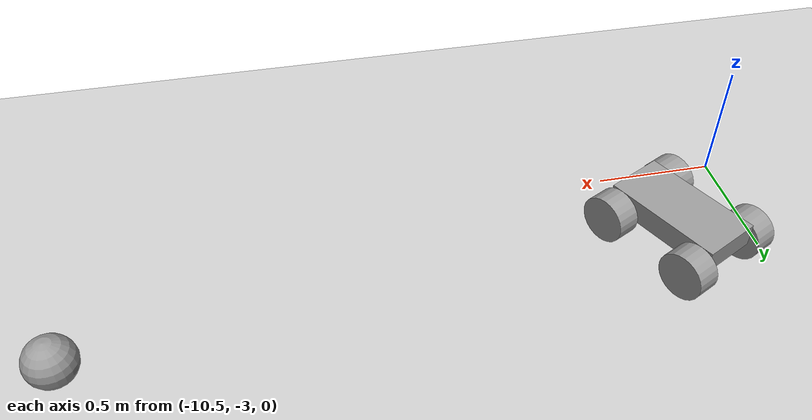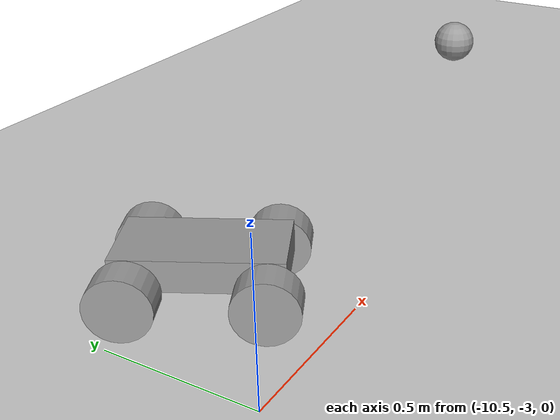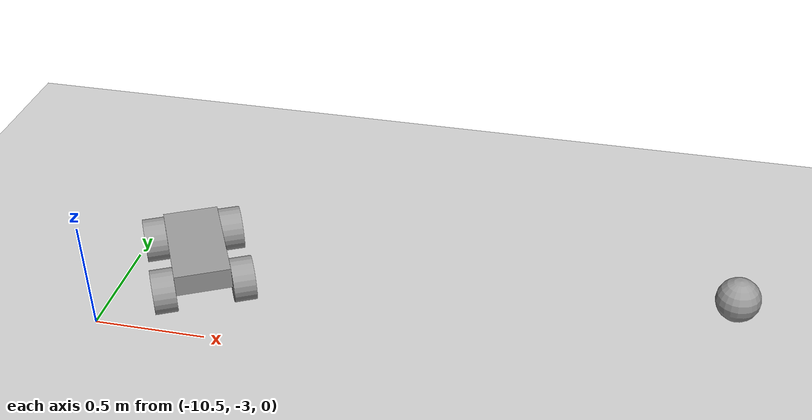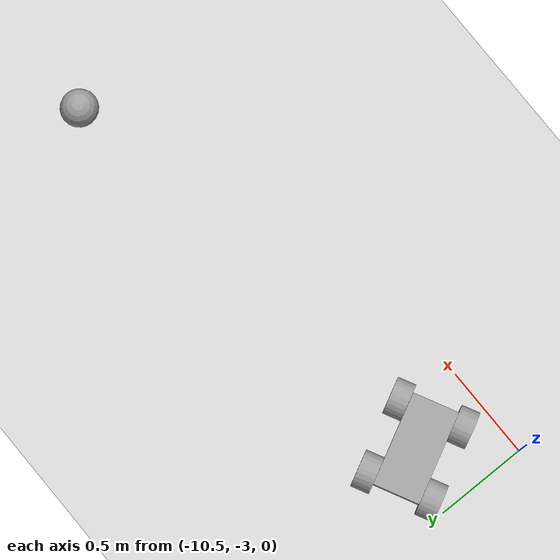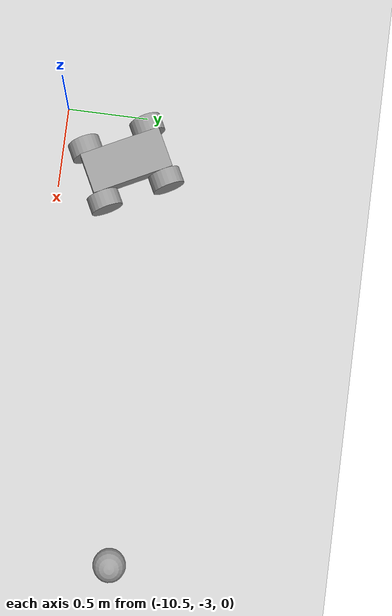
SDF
<sdf version="1.6">
 <world name="default">
  <model name="ground_plane">
   <static>1</static>
   <link name="link">
    <collision name="collision">
     <geometry><plane><normal>0 0 1</normal><size>100 100</size></plane></geometry>
     <surface>
      <contact><collide_bitmask>65535</collide_bitmask></contact>
      <friction><ode><mu>100</mu><mu2>50</mu2></ode></friction>
     </surface>
    </collision>
    <visual name="visual">
     <cast_shadows>0</cast_shadows>
     <geometry><plane><normal>0 0 1</normal><size>100 100</size></plane></geometry>
     <material>
      <script><uri>file://media/materials/scripts/gazebo.material</uri><name>Gazebo/Grey</name></script>
     </material>
    </visual>
   </link>
  </model>
  <model name="carbot_0">
   <link name="link_0">
    <inertial>
     <mass>1</mass>
     <inertia>
      <ixx>0.166667</ixx>
      <ixy>0</ixy>
      <ixz>0</ixz>
      <iyy>0.166667</iyy>
      <iyz>0</iyz>
      <izz>0.166667</izz>
     </inertia>
    </inertial>
    <pose>0 -0 0.2 0 -0 0</pose>
    <visual name="visual">
     <geometry><box><size>0.5 0.25 0.1</size></box></geometry>
     <material>
      <lighting>1</lighting>
      <script><uri>file://media/materials/scripts/gazebo.material</uri><name>Gazebo/Grey</name></script>
      <shader type="pixel"><normal_map>__default__</normal_map></shader>
      <ambient>0.3 0.3 0.3 1</ambient>
      <diffuse>0.7 0.7 0.7 1</diffuse>
      <specular>0.01 0.01 0.01 1</specular>
      <emissive>0 0 0 1</emissive>
     </material>
    </visual>
    <collision name="collision">
     <geometry><box><size>0.5 0.25 0.1</size></box></geometry>
     <surface>
      <friction>
       <ode><mu>1</mu><mu2>1</mu2><fdir1>0 0 0</fdir1><slip1>0</slip1><slip2>0</slip2></ode>
       <torsional>
        <coefficient>1</coefficient>
        <patch_radius>0</patch_radius>
        <surface_radius>0</surface_radius>
        <use_patch_radius>1</use_patch_radius>
        <ode><slip>0</slip></ode>
       </torsional>
      </friction>
      <bounce><restitution_coefficient>0</restitution_coefficient><threshold>1e+06</threshold></bounce>
      <contact>
       <collide_without_contact>0</collide_without_contact>
       <collide_without_contact_bitmask>1</collide_without_contact_bitmask>
       <collide_bitmask>1</collide_bitmask>
       <ode>
        <soft_cfm>0</soft_cfm>
        <soft_erp>0.2</soft_erp>
        <kp>1e+13</kp>
        <kd>1</kd>
        <max_vel>0.01</max_vel>
        <min_depth>0</min_depth>
       </ode>
       <bullet>
        <split_impulse>1</split_impulse>
        <split_impulse_penetration_threshold>-0.01</split_impulse_penetration_threshold>
        <soft_cfm>0</soft_cfm>
        <soft_erp>0.2</soft_erp>
        <kp>1e+13</kp>
        <kd>1</kd>
       </bullet>
      </contact>
     </surface>
    </collision>
   </link>
   <link name="link_2_clone">
    <inertial>
     <mass>1</mass>
     <inertia><ixx>0.145833</ixx><ixy>0</ixy><ixz>0</ixz><iyy>0.145833</iyy><iyz>0</iyz><izz>0.125</izz></inertia>
    </inertial>
    <pose>0.20023 -0.175088 0.15 1.5707 -0 0</pose>
    <visual name="visual">
     <geometry><cylinder><radius>0.1</radius><length>0.1</length></cylinder></geometry>
     <material>
      <lighting>1</lighting>
      <script><uri>file://media/materials/scripts/gazebo.material</uri><name>Gazebo/Grey</name></script>
      <shader type="pixel"><normal_map>__default__</normal_map></shader>
      <ambient>0.3 0.3 0.3 1</ambient>
      <diffuse>0.7 0.7 0.7 1</diffuse>
      <specular>0.01 0.01 0.01 1</specular>
      <emissive>0 0 0 1</emissive>
     </material>
    </visual>
    <collision name="collision">
     <geometry><cylinder><radius>0.1</radius><length>0.1</length></cylinder></geometry>
     <surface>
      <friction>
       <ode><mu>1</mu><mu2>1</mu2><fdir1>0 0 0</fdir1><slip1>0</slip1><slip2>0</slip2></ode>
       <torsional>
        <coefficient>1</coefficient>
        <patch_radius>0</patch_radius>
        <surface_radius>0</surface_radius>
        <use_patch_radius>1</use_patch_radius>
        <ode><slip>0</slip></ode>
       </torsional>
      </friction>
      <bounce><restitution_coefficient>0</restitution_coefficient><threshold>1e+06</threshold></bounce>
      <contact>
       <collide_without_contact>0</collide_without_contact>
       <collide_without_contact_bitmask>1</collide_without_contact_bitmask>
       <collide_bitmask>1</collide_bitmask>
       <ode>
        <soft_cfm>0</soft_cfm>
        <soft_erp>0.2</soft_erp>
        <kp>1e+13</kp>
        <kd>1</kd>
        <max_vel>0.01</max_vel>
        <min_depth>0</min_depth>
       </ode>
       <bullet>
        <split_impulse>1</split_impulse>
        <split_impulse_penetration_threshold>-0.01</split_impulse_penetration_threshold>
        <soft_cfm>0</soft_cfm>
        <soft_erp>0.2</soft_erp>
        <kp>1e+13</kp>
        <kd>1</kd>
       </bullet>
      </contact>
     </surface>
    </collision>
   </link>
   <link name="link_2_clone_clone">
    <inertial>
     <mass>1</mass>
     <inertia><ixx>0.145833</ixx><ixy>0</ixy><ixz>0</ixz><iyy>0.145833</iyy><iyz>0</iyz><izz>0.125</izz></inertia>
    </inertial>
    <pose>-0.2 -0.175422 0.15 1.5707 -0 0</pose>
    <visual name="visual">
     <geometry><cylinder><radius>0.1</radius><length>0.1</length></cylinder></geometry>
     <material>
      <lighting>1</lighting>
      <script><uri>file://media/materials/scripts/gazebo.material</uri><name>Gazebo/Grey</name></script>
      <shader type="pixel"><normal_map>__default__</normal_map></shader>
      <ambient>0.3 0.3 0.3 1</ambient>
      <diffuse>0.7 0.7 0.7 1</diffuse>
      <specular>0.01 0.01 0.01 1</specular>
      <emissive>0 0 0 1</emissive>
     </material>
    </visual>
    <collision name="collision">
     <geometry><cylinder><radius>0.1</radius><length>0.1</length></cylinder></geometry>
     <surface>
      <friction>
       <ode><mu>1</mu><mu2>1</mu2><fdir1>0 0 0</fdir1><slip1>0</slip1><slip2>0</slip2></ode>
       <torsional>
        <coefficient>1</coefficient>
        <patch_radius>0</patch_radius>
        <surface_radius>0</surface_radius>
        <use_patch_radius>1</use_patch_radius>
        <ode><slip>0</slip></ode>
       </torsional>
      </friction>
      <bounce><restitution_coefficient>0</restitution_coefficient><threshold>1e+06</threshold></bounce>
      <contact>
       <collide_without_contact>0</collide_without_contact>
       <collide_without_contact_bitmask>1</collide_without_contact_bitmask>
       <collide_bitmask>1</collide_bitmask>
       <ode>
        <soft_cfm>0</soft_cfm>
        <soft_erp>0.2</soft_erp>
        <kp>1e+13</kp>
        <kd>1</kd>
        <max_vel>0.01</max_vel>
        <min_depth>0</min_depth>
       </ode>
       <bullet>
        <split_impulse>1</split_impulse>
        <split_impulse_penetration_threshold>-0.01</split_impulse_penetration_threshold>
        <soft_cfm>0</soft_cfm>
        <soft_erp>0.2</soft_erp>
        <kp>1e+13</kp>
        <kd>1</kd>
       </bullet>
      </contact>
     </surface>
    </collision>
   </link>
   <link name="link_2_clone_clone_0">
    <inertial>
     <mass>1</mass>
     <inertia><ixx>0.145833</ixx><ixy>0</ixy><ixz>0</ixz><iyy>0.145833</iyy><iyz>0</iyz><izz>0.125</izz></inertia>
    </inertial>
    <pose>-0.199762 0.175089 0.15 1.5707 -0 0</pose>
    <visual name="visual">
     <geometry><cylinder><radius>0.1</radius><length>0.1</length></cylinder></geometry>
     <material>
      <lighting>1</lighting>
      <script><uri>file://media/materials/scripts/gazebo.material</uri><name>Gazebo/Grey</name></script>
      <shader type="pixel"><normal_map>__default__</normal_map></shader>
      <ambient>0.3 0.3 0.3 1</ambient>
      <diffuse>0.7 0.7 0.7 1</diffuse>
      <specular>0.01 0.01 0.01 1</specular>
      <emissive>0 0 0 1</emissive>
     </material>
    </visual>
    <collision name="collision">
     <geometry><cylinder><radius>0.1</radius><length>0.1</length></cylinder></geometry>
     <surface>
      <friction>
       <ode><mu>1</mu><mu2>1</mu2><fdir1>0 0 0</fdir1><slip1>0</slip1><slip2>0</slip2></ode>
       <torsional>
        <coefficient>1</coefficient>
        <patch_radius>0</patch_radius>
        <surface_radius>0</surface_radius>
        <use_patch_radius>1</use_patch_radius>
        <ode><slip>0</slip></ode>
       </torsional>
      </friction>
      <bounce><restitution_coefficient>0</restitution_coefficient><threshold>1e+06</threshold></bounce>
      <contact>
       <collide_without_contact>0</collide_without_contact>
       <collide_without_contact_bitmask>1</collide_without_contact_bitmask>
       <collide_bitmask>1</collide_bitmask>
       <ode>
        <soft_cfm>0</soft_cfm>
        <soft_erp>0.2</soft_erp>
        <kp>1e+13</kp>
        <kd>1</kd>
        <max_vel>0.01</max_vel>
        <min_depth>0</min_depth>
       </ode>
       <bullet>
        <split_impulse>1</split_impulse>
        <split_impulse_penetration_threshold>-0.01</split_impulse_penetration_threshold>
        <soft_cfm>0</soft_cfm>
        <soft_erp>0.2</soft_erp>
        <kp>1e+13</kp>
        <kd>1</kd>
       </bullet>
      </contact>
     </surface>
    </collision>
   </link>
   <link name="link_2_clone_clone_1">
    <inertial>
     <mass>1</mass>
     <inertia><ixx>0.145833</ixx><ixy>0</ixy><ixz>0</ixz><iyy>0.145833</iyy><iyz>0</iyz><izz>0.125</izz></inertia>
    </inertial>
    <pose>0.200238 0.175299 0.15 1.5707 -0 0</pose>
    <visual name="visual">
     <geometry><cylinder><radius>0.1</radius><length>0.1</length></cylinder></geometry>
     <material>
      <lighting>1</lighting>
      <script><uri>file://media/materials/scripts/gazebo.material</uri><name>Gazebo/Grey</name></script>
      <shader type="pixel"><normal_map>__default__</normal_map></shader>
      <ambient>0.3 0.3 0.3 1</ambient>
      <diffuse>0.7 0.7 0.7 1</diffuse>
      <specular>0.01 0.01 0.01 1</specular>
      <emissive>0 0 0 1</emissive>
     </material>
    </visual>
    <collision name="collision">
     <geometry><cylinder><radius>0.1</radius><length>0.1</length></cylinder></geometry>
     <surface>
      <friction>
       <ode><mu>1</mu><mu2>1</mu2><fdir1>0 0 0</fdir1><slip1>0</slip1><slip2>0</slip2></ode>
       <torsional>
        <coefficient>1</coefficient>
        <patch_radius>0</patch_radius>
        <surface_radius>0</surface_radius>
        <use_patch_radius>1</use_patch_radius>
        <ode><slip>0</slip></ode>
       </torsional>
      </friction>
      <bounce><restitution_coefficient>0</restitution_coefficient><threshold>1e+06</threshold></bounce>
      <contact>
       <collide_without_contact>0</collide_without_contact>
       <collide_without_contact_bitmask>1</collide_without_contact_bitmask>
       <collide_bitmask>1</collide_bitmask>
       <ode>
        <soft_cfm>0</soft_cfm>
        <soft_erp>0.2</soft_erp>
        <kp>1e+13</kp>
        <kd>1</kd>
        <max_vel>0.01</max_vel>
        <min_depth>0</min_depth>
       </ode>
       <bullet>
        <split_impulse>1</split_impulse>
        <split_impulse_penetration_threshold>-0.01</split_impulse_penetration_threshold>
        <soft_cfm>0</soft_cfm>
        <soft_erp>0.2</soft_erp>
        <kp>1e+13</kp>
        <kd>1</kd>
       </bullet>
      </contact>
     </surface>
    </collision>
   </link>
   <joint name="link_0_JOINT_0" type="revolute">
    <parent>link_0</parent>
    <child>link_2_clone_clone</child>
    <axis>
     <xyz>0 0 1</xyz>
     <use_parent_model_frame>0</use_parent_model_frame>
     <limit>
      <lower>-1.79769e+308</lower>
      <upper>1.79769e+308</upper>
      <effort>-1</effort>
      <velocity>-1</velocity>
     </limit>
     <dynamics>
      <spring_reference>0</spring_reference>
      <spring_stiffness>0</spring_stiffness>
      <damping>0</damping>
      <friction>0</friction>
     </dynamics>
    </axis>
    <physics>
     <ode><limit><cfm>0</cfm><erp>0.2</erp></limit><suspension><cfm>0</cfm><erp>0.2</erp></suspension></ode>
    </physics>
   </joint>
   <joint name="link_0_JOINT_1" type="revolute">
    <parent>link_0</parent>
    <child>link_2_clone</child>
    <axis>
     <xyz>0 0 1</xyz>
     <use_parent_model_frame>0</use_parent_model_frame>
     <limit>
      <lower>-1.79769e+308</lower>
      <upper>1.79769e+308</upper>
      <effort>-1</effort>
      <velocity>-1</velocity>
     </limit>
     <dynamics>
      <spring_reference>0</spring_reference>
      <spring_stiffness>0</spring_stiffness>
      <damping>0</damping>
     </dynamics>
    </axis>
    <physics>
     <ode><limit><cfm>0</cfm><erp>0.2</erp></limit><suspension><cfm>0</cfm><erp>0.2</erp></suspension></ode>
    </physics>
   </joint>
   <joint name="link_0_JOINT_2" type="revolute">
    <parent>link_0</parent>
    <child>link_2_clone_clone_1</child>
    <axis>
     <xyz>0 0 1</xyz>
     <use_parent_model_frame>0</use_parent_model_frame>
     <limit>
      <lower>-1.79769e+308</lower>
      <upper>1.79769e+308</upper>
      <effort>-1</effort>
      <velocity>-1</velocity>
     </limit>
     <dynamics>
      <spring_reference>0</spring_reference>
      <spring_stiffness>0</spring_stiffness>
      <damping>0</damping>
     </dynamics>
    </axis>
    <physics>
     <ode><limit><cfm>0</cfm><erp>0.2</erp></limit><suspension><cfm>0</cfm><erp>0.2</erp></suspension></ode>
    </physics>
   </joint>
   <joint name="link_0_JOINT_3" type="revolute">
    <parent>link_0</parent>
    <child>link_2_clone_clone_0</child>
    <axis>
     <xyz>0 0 1</xyz>
     <use_parent_model_frame>0</use_parent_model_frame>
     <limit>
      <lower>-1.79769e+308</lower>
      <upper>1.79769e+308</upper>
      <effort>-1</effort>
      <velocity>-1</velocity>
     </limit>
     <dynamics>
      <spring_reference>0</spring_reference>
      <spring_stiffness>0</spring_stiffness>
      <damping>0</damping>
     </dynamics>
    </axis>
    <physics>
     <ode><limit><cfm>0</cfm><erp>0.2</erp></limit><suspension><cfm>0</cfm><erp>0.2</erp></suspension></ode>
    </physics>
   </joint>
   <static>0</static>
   <pose>-10.1647 -2.59289 -0.049997 -1e-06 -1.2e-05 -1.10189</pose>
  </model>
  <model name="my_ball">
   <link name="link_0">
    <pose>-0.248359 0.219615 0 0 -0 0</pose>
    <inertial>
     <mass>1</mass>
     <inertia><ixx>0.1</ixx><ixy>0</ixy><ixz>0</ixz><iyy>0.1</iyy><iyz>0</iyz><izz>0.1</izz></inertia>
    </inertial>
    <visual name="visual">
     <geometry><sphere><radius>0.1</radius></sphere></geometry>
     <material>
      <lighting>1</lighting>
      <script><uri>file://media/materials/scripts/gazebo.material</uri><name>Gazebo/Grey</name></script>
      <shader type="pixel"><normal_map>__default__</normal_map></shader>
      <ambient>1 1 1 1</ambient>
      <diffuse>1 1 1 1</diffuse>
      <specular>1 1 1 1</specular>
      <emissive>1 1 1 1</emissive>
     </material>
    </visual>
    <collision name="collision">
     <geometry><sphere><radius>0.1</radius></sphere></geometry>
     <surface>
      <friction>
       <ode><mu>1</mu><mu2>1</mu2><fdir1>0 0 0</fdir1><slip1>0</slip1><slip2>0</slip2></ode>
       <torsional>
        <coefficient>1</coefficient>
        <patch_radius>0</patch_radius>
        <surface_radius>0</surface_radius>
        <use_patch_radius>1</use_patch_radius>
        <ode><slip>0</slip></ode>
       </torsional>
      </friction>
      <bounce><restitution_coefficient>0</restitution_coefficient><threshold>1e+06</threshold></bounce>
      <contact>
       <collide_without_contact>0</collide_without_contact>
       <collide_without_contact_bitmask>1</collide_without_contact_bitmask>
       <collide_bitmask>1</collide_bitmask>
       <ode>
        <soft_cfm>0</soft_cfm>
        <soft_erp>0.2</soft_erp>
        <kp>1e+13</kp>
        <kd>1</kd>
        <max_vel>0.01</max_vel>
        <min_depth>0</min_depth>
       </ode>
       <bullet>
        <split_impulse>1</split_impulse>
        <split_impulse_penetration_threshold>-0.01</split_impulse_penetration_threshold>
        <soft_cfm>0</soft_cfm>
        <soft_erp>0.2</soft_erp>
        <kp>1e+13</kp>
        <kd>1</kd>
       </bullet>
      </contact>
     </surface>
    </collision>
   </link>
   <static>0</static>
   <pose>-7.49523 -2.59807 0.1 0 -0 0</pose>
  </model>
 </world>
</sdf>
